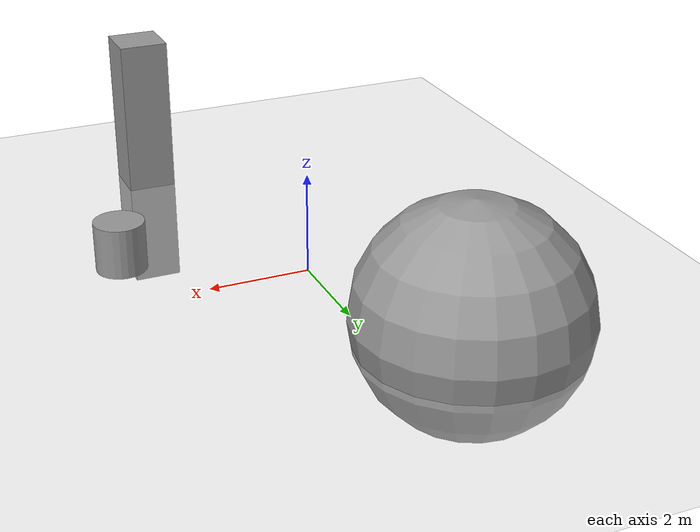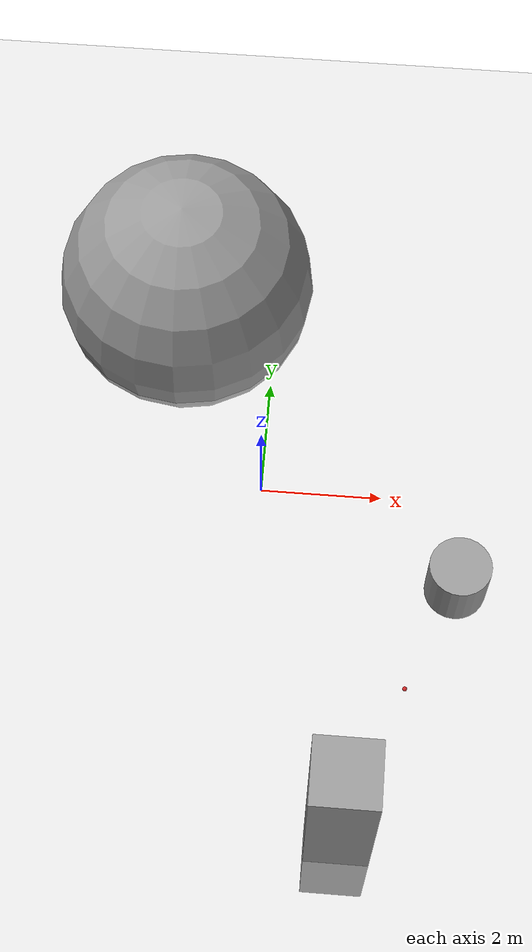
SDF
<sdf version="1.6">
 <world name="default">
  <light name="sun" type="directional">
   <pose>0 0 10 0 -0 0</pose>
   <diffuse>0.8 0.8 0.8 1</diffuse>
   <specular>0.2 0.2 0.2 1</specular>
   <attenuation>
    <range>1000</range>
    <constant>0.9</constant>
    <linear>0.01</linear>
    <quadratic>0.001</quadratic>
   </attenuation>
   <direction>-0.5 0.1 -0.9</direction>
  </light>
  <model name="ground_plane">
   <static>1</static>
   <link name="link">
    <collision name="collision">
     <geometry><plane><normal>0 0 1</normal><size>100 100</size></plane></geometry>
     <surface>
      <contact><collide_bitmask>65535</collide_bitmask></contact>
      <friction><ode><mu>100</mu><mu2>50</mu2></ode></friction>
     </surface>
    </collision>
    <visual name="visual">
     <cast_shadows>0</cast_shadows>
     <geometry><plane><normal>0 0 1</normal><size>100 100</size></plane></geometry>
     <material>
      <script><uri>file://media/materials/scripts/gazebo.material</uri><name>Gazebo/Grey</name></script>
     </material>
    </visual>
   </link>
  </model>
  <gravity>0 0 -9.8</gravity>
  <magnetic_field>6e-06 2.3e-05 -4.2e-05</magnetic_field>
  <atmosphere type="adiabatic"/>
  <physics name="default_physics" default="0" type="ode">
   <max_step_size>0.001</max_step_size>
   <real_time_factor>1</real_time_factor>
   <real_time_update_rate>1000</real_time_update_rate>
  </physics>
  <scene><ambient>0.4 0.4 0.4 1</ambient><background>0.7 0.7 0.7 1</background><shadows>1</shadows></scene>
  <audio><device>default</device></audio>
  <spherical_coordinates>
   <surface_model>EARTH_WGS84</surface_model>
   <latitude_deg>0</latitude_deg>
   <longitude_deg>0</longitude_deg>
   <elevation>0</elevation>
   <heading_deg>0</heading_deg>
  </spherical_coordinates>
  <model name="unit_box">
   <pose>1.61015 -5.65028 0.5 -0 -0 -0</pose>
   <link name="link">
    <inertial>
     <mass>1</mass>
     <inertia>
      <ixx>0.166667</ixx>
      <ixy>0</ixy>
      <ixz>0</ixz>
      <iyy>0.166667</iyy>
      <iyz>0</iyz>
      <izz>0.166667</izz>
     </inertia>
    </inertial>
    <collision name="collision"><geometry><box><size>1 1 5.44559</size></box></geometry></collision>
    <visual name="visual">
     <geometry><box><size>1 1 5.44559</size></box></geometry>
     <material>
      <script><name>Gazebo/Grey</name><uri>file://media/materials/scripts/gazebo.material</uri></script>
     </material>
    </visual>
   </link>
  </model>
  <model name="unit_sphere">
   <pose>-1.60256 3.67317 0.5 0 -0 0</pose>
   <link name="link">
    <inertial>
     <mass>1</mass>
     <inertia><ixx>0.1</ixx><ixy>0</ixy><ixz>0</ixz><iyy>0.1</iyy><iyz>0</iyz><izz>0.1</izz></inertia>
    </inertial>
    <collision name="collision"><geometry><sphere><radius>2.20979</radius></sphere></geometry></collision>
    <visual name="visual">
     <geometry><sphere><radius>2.20979</radius></sphere></geometry>
     <material>
      <script><name>Gazebo/Grey</name><uri>file://media/materials/scripts/gazebo.material</uri></script>
     </material>
    </visual>
   </link>
  </model>
  <model name="unit_cylinder">
   <pose>3.27929 -1.54812 0.499992 -3e-06 4e-06 0</pose>
   <link name="link">
    <inertial>
     <mass>1</mass>
     <inertia><ixx>0.145833</ixx><ixy>0</ixy><ixz>0</ixz><iyy>0.145833</iyy><iyz>0</iyz><izz>0.125</izz></inertia>
    </inertial>
    <collision name="collision">
     <geometry><cylinder><radius>0.5</radius><length>1</length></cylinder></geometry>
    </collision>
    <visual name="visual">
     <geometry><cylinder><radius>0.5</radius><length>1</length></cylinder></geometry>
     <material>
      <script><name>Gazebo/Grey</name><uri>file://media/materials/scripts/gazebo.material</uri></script>
     </material>
    </visual>
   </link>
  </model>
  <model name="cricket_ball">
   <link name="link">
    <pose>0 0 0.0375 0 -0 0</pose>
    <inertial>
     <mass>0.1467</mass>
     <inertia>
      <ixx>8.25187e-05</ixx>
      <ixy>0</ixy>
      <ixz>0</ixz>
      <iyy>8.25187e-05</iyy>
      <iyz>0</iyz>
      <izz>8.25187e-05</izz>
     </inertia>
    </inertial>
    <collision name="collision">
     <geometry><sphere><radius>0.0375</radius></sphere></geometry>
     <surface>
      <contact>
       <poissons_ratio>0.347</poissons_ratio>
       <elastic_modulus>8.8e+09</elastic_modulus>
       <ode><kp>100000</kp><kd>100</kd><max_vel>100</max_vel><min_depth>0.001</min_depth></ode>
      </contact>
      <friction>
       <torsional>
        <coefficient>1</coefficient>
        <use_patch_radius>0</use_patch_radius>
        <surface_radius>0.01</surface_radius>
       </torsional>
      </friction>
     </surface>
    </collision>
    <visual name="visual">
     <geometry><sphere><radius>0.0375</radius></sphere></geometry>
     <material>
      <script><uri>file://media/materials/scripts/gazebo.material</uri><name>Gazebo/Red</name></script>
     </material>
    </visual>
    <velocity_decay><linear>0</linear><angular>0.005</angular></velocity_decay>
   </link>
   <pose>2.54078 -3.31318 -0.001014 0 -0 0</pose>
  </model>
 </world>
</sdf>
